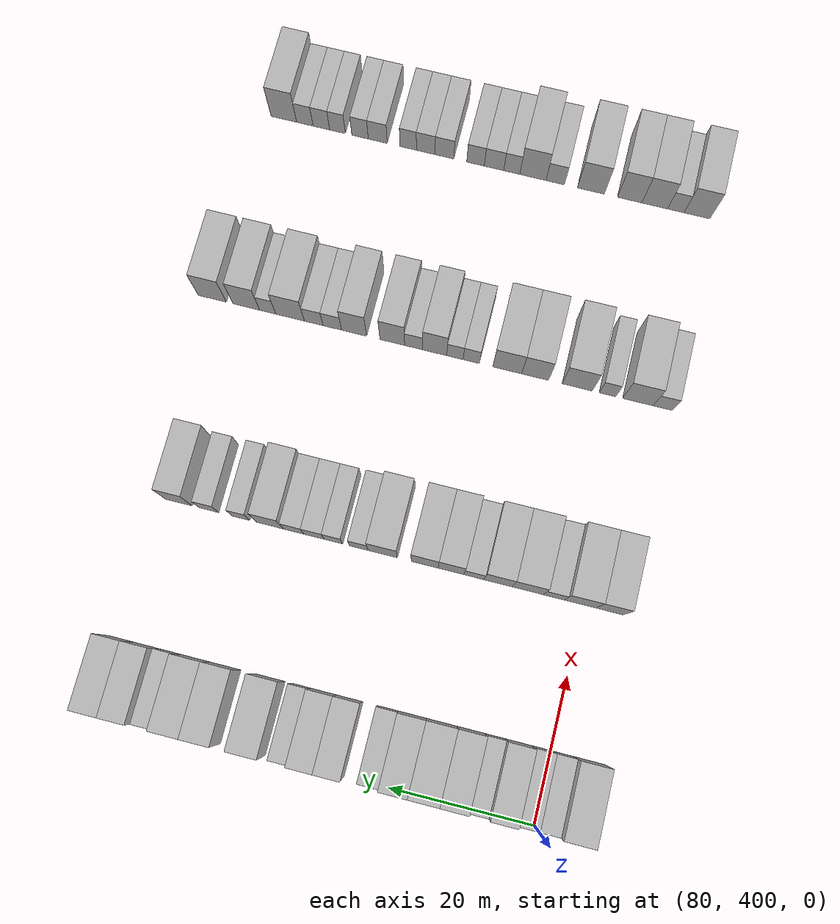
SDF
<sdf version="1.6">
 <world name="default">
  <model name="building_658">
   <static>1</static>
   <pose>85.0000 394.9011 0 0.000000 0.000000 0.000000</pose>
   <link name="link">
    <pose>0 0 4.50 0 0 0</pose>
    <collision name="collision"><geometry><box><size>10.0000 4.2949 9.0000</size></box></geometry></collision>
    <visual name="visual">
     <cast_shadows>0</cast_shadows>
     <geometry><box><size>10.0000 4.2949 9.0000</size></box></geometry>
     <material>
      <script>
       <uri>model://HANNAS_wall/materials/scripts</uri>
       <uri>model://HANNAS_wall/materials/textures</uri>
       <name>vrc/HANNAS_wall</name>
      </script>
     </material>
    </visual>
   </link>
  </model>
  <model name="building_659">
   <static>1</static>
   <pose>85.0000 398.4289 0 0.000000 0.000000 0.000000</pose>
   <link name="link">
    <pose>0 0 3.00 0 0 0</pose>
    <collision name="collision"><geometry><box><size>10.0000 2.7607 6.0000</size></box></geometry></collision>
    <visual name="visual">
     <cast_shadows>0</cast_shadows>
     <geometry><box><size>10.0000 2.7607 6.0000</size></box></geometry>
     <material>
      <script>
       <uri>model://HANNAS_wall/materials/scripts</uri>
       <uri>model://HANNAS_wall/materials/textures</uri>
       <name>vrc/HANNAS_wall</name>
      </script>
     </material>
    </visual>
   </link>
  </model>
  <model name="building_660">
   <static>1</static>
   <pose>85.0000 401.3017 0 0.000000 0.000000 0.000000</pose>
   <link name="link">
    <pose>0 0 3.00 0 0 0</pose>
    <collision name="collision"><geometry><box><size>10.0000 2.9851 6.0000</size></box></geometry></collision>
    <visual name="visual">
     <cast_shadows>0</cast_shadows>
     <geometry><box><size>10.0000 2.9851 6.0000</size></box></geometry>
     <material>
      <script>
       <uri>model://HANNAS_wall/materials/scripts</uri>
       <uri>model://HANNAS_wall/materials/textures</uri>
       <name>vrc/HANNAS_wall</name>
      </script>
     </material>
    </visual>
   </link>
  </model>
  <model name="building_661">
   <static>1</static>
   <pose>85.0000 404.6617 0 0.000000 0.000000 0.000000</pose>
   <link name="link">
    <pose>0 0 4.50 0 0 0</pose>
    <collision name="collision"><geometry><box><size>10.0000 3.7349 9.0000</size></box></geometry></collision>
    <visual name="visual">
     <cast_shadows>0</cast_shadows>
     <geometry><box><size>10.0000 3.7349 9.0000</size></box></geometry>
     <material>
      <script>
       <uri>model://HANNAS_wall/materials/scripts</uri>
       <uri>model://HANNAS_wall/materials/textures</uri>
       <name>vrc/HANNAS_wall</name>
      </script>
     </material>
    </visual>
   </link>
  </model>
  <model name="building_662">
   <static>1</static>
   <pose>85.0000 407.8750 0 0.000000 0.000000 0.000000</pose>
   <link name="link">
    <pose>0 0 3.00 0 0 0</pose>
    <collision name="collision"><geometry><box><size>10.0000 2.6916 6.0000</size></box></geometry></collision>
    <visual name="visual">
     <cast_shadows>0</cast_shadows>
     <geometry><box><size>10.0000 2.6916 6.0000</size></box></geometry>
     <material>
      <script>
       <uri>model://HANNAS_wall/materials/scripts</uri>
       <uri>model://HANNAS_wall/materials/textures</uri>
       <name>vrc/HANNAS_wall</name>
      </script>
     </material>
    </visual>
   </link>
  </model>
  <model name="building_663">
   <static>1</static>
   <pose>85.0000 411.1546 0 0.000000 0.000000 0.000000</pose>
   <link name="link">
    <pose>0 0 4.50 0 0 0</pose>
    <collision name="collision"><geometry><box><size>10.0000 3.8677 9.0000</size></box></geometry></collision>
    <visual name="visual">
     <cast_shadows>0</cast_shadows>
     <geometry><box><size>10.0000 3.8677 9.0000</size></box></geometry>
     <material>
      <script>
       <uri>model://HANNAS_wall/materials/scripts</uri>
       <uri>model://HANNAS_wall/materials/textures</uri>
       <name>vrc/HANNAS_wall</name>
      </script>
     </material>
    </visual>
   </link>
  </model>
  <model name="building_664">
   <static>1</static>
   <pose>85.0000 415.2196 0 0.000000 0.000000 0.000000</pose>
   <link name="link">
    <pose>0 0 4.50 0 0 0</pose>
    <collision name="collision"><geometry><box><size>10.0000 4.2622 9.0000</size></box></geometry></collision>
    <visual name="visual">
     <cast_shadows>0</cast_shadows>
     <geometry><box><size>10.0000 4.2622 9.0000</size></box></geometry>
     <material>
      <script>
       <uri>model://HANNAS_wall/materials/scripts</uri>
       <uri>model://HANNAS_wall/materials/textures</uri>
       <name>vrc/HANNAS_wall</name>
      </script>
     </material>
    </visual>
   </link>
  </model>
  <model name="building_665">
   <static>1</static>
   <pose>85.0000 419.2878 0 0.000000 0.000000 0.000000</pose>
   <link name="link">
    <pose>0 0 4.50 0 0 0</pose>
    <collision name="collision"><geometry><box><size>10.0000 3.8742 9.0000</size></box></geometry></collision>
    <visual name="visual">
     <cast_shadows>0</cast_shadows>
     <geometry><box><size>10.0000 3.8742 9.0000</size></box></geometry>
     <material>
      <script>
       <uri>model://HANNAS_wall/materials/scripts</uri>
       <uri>model://HANNAS_wall/materials/textures</uri>
       <name>vrc/HANNAS_wall</name>
      </script>
     </material>
    </visual>
   </link>
  </model>
  <model name="building_666">
   <static>1</static>
   <pose>85.0000 422.6826 0 0.000000 0.000000 0.000000</pose>
   <link name="link">
    <pose>0 0 3.00 0 0 0</pose>
    <collision name="collision"><geometry><box><size>10.0000 2.9153 6.0000</size></box></geometry></collision>
    <visual name="visual">
     <cast_shadows>0</cast_shadows>
     <geometry><box><size>10.0000 2.9153 6.0000</size></box></geometry>
     <material>
      <script>
       <uri>model://HANNAS_wall/materials/scripts</uri>
       <uri>model://HANNAS_wall/materials/textures</uri>
       <name>vrc/HANNAS_wall</name>
      </script>
     </material>
    </visual>
   </link>
  </model>
  <model name="building_667">
   <static>1</static>
   <pose>85.0000 427.9639 0 0.000000 0.000000 0.000000</pose>
   <link name="link">
    <pose>0 0 4.50 0 0 0</pose>
    <collision name="collision"><geometry><box><size>10.0000 3.6474 9.0000</size></box></geometry></collision>
    <visual name="visual">
     <cast_shadows>0</cast_shadows>
     <geometry><box><size>10.0000 3.6474 9.0000</size></box></geometry>
     <material>
      <script>
       <uri>model://HANNAS_wall/materials/scripts</uri>
       <uri>model://HANNAS_wall/materials/textures</uri>
       <name>vrc/HANNAS_wall</name>
      </script>
     </material>
    </visual>
   </link>
  </model>
  <model name="building_668">
   <static>1</static>
   <pose>85.0000 431.5891 0 0.000000 0.000000 0.000000</pose>
   <link name="link">
    <pose>0 0 4.50 0 0 0</pose>
    <collision name="collision"><geometry><box><size>10.0000 3.6031 9.0000</size></box></geometry></collision>
    <visual name="visual">
     <cast_shadows>0</cast_shadows>
     <geometry><box><size>10.0000 3.6031 9.0000</size></box></geometry>
     <material>
      <script>
       <uri>model://HANNAS_wall/materials/scripts</uri>
       <uri>model://HANNAS_wall/materials/textures</uri>
       <name>vrc/HANNAS_wall</name>
      </script>
     </material>
    </visual>
   </link>
  </model>
  <model name="building_669">
   <static>1</static>
   <pose>85.0000 434.7558 0 0.000000 0.000000 0.000000</pose>
   <link name="link">
    <pose>0 0 3.00 0 0 0</pose>
    <collision name="collision"><geometry><box><size>10.0000 2.7303 6.0000</size></box></geometry></collision>
    <visual name="visual">
     <cast_shadows>0</cast_shadows>
     <geometry><box><size>10.0000 2.7303 6.0000</size></box></geometry>
     <material>
      <script>
       <uri>model://HANNAS_wall/materials/scripts</uri>
       <uri>model://HANNAS_wall/materials/textures</uri>
       <name>vrc/HANNAS_wall</name>
      </script>
     </material>
    </visual>
   </link>
  </model>
  <model name="building_670">
   <static>1</static>
   <pose>85.0000 439.2550 0 0.000000 0.000000 0.000000</pose>
   <link name="link">
    <pose>0 0 4.50 0 0 0</pose>
    <collision name="collision"><geometry><box><size>10.0000 4.2680 9.0000</size></box></geometry></collision>
    <visual name="visual">
     <cast_shadows>0</cast_shadows>
     <geometry><box><size>10.0000 4.2680 9.0000</size></box></geometry>
     <material>
      <script>
       <uri>model://HANNAS_wall/materials/scripts</uri>
       <uri>model://HANNAS_wall/materials/textures</uri>
       <name>vrc/HANNAS_wall</name>
      </script>
     </material>
    </visual>
   </link>
  </model>
  <model name="building_671">
   <static>1</static>
   <pose>85.0000 445.4514 0 0.000000 0.000000 0.000000</pose>
   <link name="link">
    <pose>0 0 4.50 0 0 0</pose>
    <collision name="collision"><geometry><box><size>10.0000 4.1249 9.0000</size></box></geometry></collision>
    <visual name="visual">
     <cast_shadows>0</cast_shadows>
     <geometry><box><size>10.0000 4.1249 9.0000</size></box></geometry>
     <material>
      <script>
       <uri>model://HANNAS_wall/materials/scripts</uri>
       <uri>model://HANNAS_wall/materials/textures</uri>
       <name>vrc/HANNAS_wall</name>
      </script>
     </material>
    </visual>
   </link>
  </model>
  <model name="building_672">
   <static>1</static>
   <pose>85.0000 449.6112 0 0.000000 0.000000 0.000000</pose>
   <link name="link">
    <pose>0 0 4.50 0 0 0</pose>
    <collision name="collision"><geometry><box><size>10.0000 4.1947 9.0000</size></box></geometry></collision>
    <visual name="visual">
     <cast_shadows>0</cast_shadows>
     <geometry><box><size>10.0000 4.1947 9.0000</size></box></geometry>
     <material>
      <script>
       <uri>model://HANNAS_wall/materials/scripts</uri>
       <uri>model://HANNAS_wall/materials/textures</uri>
       <name>vrc/HANNAS_wall</name>
      </script>
     </material>
    </visual>
   </link>
  </model>
  <model name="building_673">
   <static>1</static>
   <pose>85.0000 453.1889 0 0.000000 0.000000 0.000000</pose>
   <link name="link">
    <pose>0 0 3.00 0 0 0</pose>
    <collision name="collision"><geometry><box><size>10.0000 2.9608 6.0000</size></box></geometry></collision>
    <visual name="visual">
     <cast_shadows>0</cast_shadows>
     <geometry><box><size>10.0000 2.9608 6.0000</size></box></geometry>
     <material>
      <script>
       <uri>model://HANNAS_wall/materials/scripts</uri>
       <uri>model://HANNAS_wall/materials/textures</uri>
       <name>vrc/HANNAS_wall</name>
      </script>
     </material>
    </visual>
   </link>
  </model>
  <model name="building_674">
   <static>1</static>
   <pose>85.0000 456.5412 0 0.000000 0.000000 0.000000</pose>
   <link name="link">
    <pose>0 0 4.50 0 0 0</pose>
    <collision name="collision"><geometry><box><size>10.0000 3.7436 9.0000</size></box></geometry></collision>
    <visual name="visual">
     <cast_shadows>0</cast_shadows>
     <geometry><box><size>10.0000 3.7436 9.0000</size></box></geometry>
     <material>
      <script>
       <uri>model://HANNAS_wall/materials/scripts</uri>
       <uri>model://HANNAS_wall/materials/textures</uri>
       <name>vrc/HANNAS_wall</name>
      </script>
     </material>
    </visual>
   </link>
  </model>
  <model name="building_675">
   <static>1</static>
   <pose>85.0000 460.3382 0 0.000000 0.000000 0.000000</pose>
   <link name="link">
    <pose>0 0 4.50 0 0 0</pose>
    <collision name="collision"><geometry><box><size>10.0000 3.8504 9.0000</size></box></geometry></collision>
    <visual name="visual">
     <cast_shadows>0</cast_shadows>
     <geometry><box><size>10.0000 3.8504 9.0000</size></box></geometry>
     <material>
      <script>
       <uri>model://HANNAS_wall/materials/scripts</uri>
       <uri>model://HANNAS_wall/materials/textures</uri>
       <name>vrc/HANNAS_wall</name>
      </script>
     </material>
    </visual>
   </link>
  </model>
  <model name="building_887">
   <static>1</static>
   <pose>115.0000 396.3090 0 0.000000 0.000000 0.000000</pose>
   <link name="link">
    <pose>0 0 4.50 0 0 0</pose>
    <collision name="collision"><geometry><box><size>10.0000 3.8778 9.0000</size></box></geometry></collision>
    <visual name="visual">
     <cast_shadows>0</cast_shadows>
     <geometry><box><size>10.0000 3.8778 9.0000</size></box></geometry>
     <material>
      <script>
       <uri>model://HANNAS_wall/materials/scripts</uri>
       <uri>model://HANNAS_wall/materials/textures</uri>
       <name>vrc/HANNAS_wall</name>
      </script>
     </material>
    </visual>
   </link>
  </model>
  <model name="building_888">
   <static>1</static>
   <pose>115.0000 400.4696 0 0.000000 0.000000 0.000000</pose>
   <link name="link">
    <pose>0 0 4.50 0 0 0</pose>
    <collision name="collision"><geometry><box><size>10.0000 4.4434 9.0000</size></box></geometry></collision>
    <visual name="visual">
     <cast_shadows>0</cast_shadows>
     <geometry><box><size>10.0000 4.4434 9.0000</size></box></geometry>
     <material>
      <script>
       <uri>model://HANNAS_wall/materials/scripts</uri>
       <uri>model://HANNAS_wall/materials/textures</uri>
       <name>vrc/HANNAS_wall</name>
      </script>
     </material>
    </visual>
   </link>
  </model>
  <model name="building_889">
   <static>1</static>
   <pose>115.0000 404.1871 0 0.000000 0.000000 0.000000</pose>
   <link name="link">
    <pose>0 0 3.00 0 0 0</pose>
    <collision name="collision"><geometry><box><size>10.0000 2.9917 6.0000</size></box></geometry></collision>
    <visual name="visual">
     <cast_shadows>0</cast_shadows>
     <geometry><box><size>10.0000 2.9917 6.0000</size></box></geometry>
     <material>
      <script>
       <uri>model://HANNAS_wall/materials/scripts</uri>
       <uri>model://HANNAS_wall/materials/textures</uri>
       <name>vrc/HANNAS_wall</name>
      </script>
     </material>
    </visual>
   </link>
  </model>
  <model name="building_890">
   <static>1</static>
   <pose>115.0000 407.8905 0 0.000000 0.000000 0.000000</pose>
   <link name="link">
    <pose>0 0 4.50 0 0 0</pose>
    <collision name="collision"><geometry><box><size>10.0000 4.4149 9.0000</size></box></geometry></collision>
    <visual name="visual">
     <cast_shadows>0</cast_shadows>
     <geometry><box><size>10.0000 4.4149 9.0000</size></box></geometry>
     <material>
      <script>
       <uri>model://HANNAS_wall/materials/scripts</uri>
       <uri>model://HANNAS_wall/materials/textures</uri>
       <name>vrc/HANNAS_wall</name>
      </script>
     </material>
    </visual>
   </link>
  </model>
  <model name="building_891">
   <static>1</static>
   <pose>115.0000 412.0976 0 0.000000 0.000000 0.000000</pose>
   <link name="link">
    <pose>0 0 4.50 0 0 0</pose>
    <collision name="collision"><geometry><box><size>10.0000 3.9994 9.0000</size></box></geometry></collision>
    <visual name="visual">
     <cast_shadows>0</cast_shadows>
     <geometry><box><size>10.0000 3.9994 9.0000</size></box></geometry>
     <material>
      <script>
       <uri>model://HANNAS_wall/materials/scripts</uri>
       <uri>model://HANNAS_wall/materials/textures</uri>
       <name>vrc/HANNAS_wall</name>
      </script>
     </material>
    </visual>
   </link>
  </model>
  <model name="building_892">
   <static>1</static>
   <pose>115.0000 415.5208 0 0.000000 0.000000 0.000000</pose>
   <link name="link">
    <pose>0 0 3.00 0 0 0</pose>
    <collision name="collision"><geometry><box><size>10.0000 2.8470 6.0000</size></box></geometry></collision>
    <visual name="visual">
     <cast_shadows>0</cast_shadows>
     <geometry><box><size>10.0000 2.8470 6.0000</size></box></geometry>
     <material>
      <script>
       <uri>model://HANNAS_wall/materials/scripts</uri>
       <uri>model://HANNAS_wall/materials/textures</uri>
       <name>vrc/HANNAS_wall</name>
      </script>
     </material>
    </visual>
   </link>
  </model>
  <model name="building_893">
   <static>1</static>
   <pose>115.0000 418.7851 0 0.000000 0.000000 0.000000</pose>
   <link name="link">
    <pose>0 0 4.50 0 0 0</pose>
    <collision name="collision"><geometry><box><size>10.0000 3.6815 9.0000</size></box></geometry></collision>
    <visual name="visual">
     <cast_shadows>0</cast_shadows>
     <geometry><box><size>10.0000 3.6815 9.0000</size></box></geometry>
     <material>
      <script>
       <uri>model://HANNAS_wall/materials/scripts</uri>
       <uri>model://HANNAS_wall/materials/textures</uri>
       <name>vrc/HANNAS_wall</name>
      </script>
     </material>
    </visual>
   </link>
  </model>
  <model name="building_894">
   <static>1</static>
   <pose>115.0000 422.5538 0 0.000000 0.000000 0.000000</pose>
   <link name="link">
    <pose>0 0 4.50 0 0 0</pose>
    <collision name="collision"><geometry><box><size>10.0000 3.8559 9.0000</size></box></geometry></collision>
    <visual name="visual">
     <cast_shadows>0</cast_shadows>
     <geometry><box><size>10.0000 3.8559 9.0000</size></box></geometry>
     <material>
      <script>
       <uri>model://HANNAS_wall/materials/scripts</uri>
       <uri>model://HANNAS_wall/materials/textures</uri>
       <name>vrc/HANNAS_wall</name>
      </script>
     </material>
    </visual>
   </link>
  </model>
  <model name="building_895">
   <static>1</static>
   <pose>115.0000 428.5721 0 0.000000 0.000000 0.000000</pose>
   <link name="link">
    <pose>0 0 4.50 0 0 0</pose>
    <collision name="collision"><geometry><box><size>10.0000 4.1807 9.0000</size></box></geometry></collision>
    <visual name="visual">
     <cast_shadows>0</cast_shadows>
     <geometry><box><size>10.0000 4.1807 9.0000</size></box></geometry>
     <material>
      <script>
       <uri>model://HANNAS_wall/materials/scripts</uri>
       <uri>model://HANNAS_wall/materials/textures</uri>
       <name>vrc/HANNAS_wall</name>
      </script>
     </material>
    </visual>
   </link>
  </model>
  <model name="building_896">
   <static>1</static>
   <pose>115.0000 432.0067 0 0.000000 0.000000 0.000000</pose>
   <link name="link">
    <pose>0 0 3.00 0 0 0</pose>
    <collision name="collision"><geometry><box><size>10.0000 2.6884 6.0000</size></box></geometry></collision>
    <visual name="visual">
     <cast_shadows>0</cast_shadows>
     <geometry><box><size>10.0000 2.6884 6.0000</size></box></geometry>
     <material>
      <script>
       <uri>model://HANNAS_wall/materials/scripts</uri>
       <uri>model://HANNAS_wall/materials/textures</uri>
       <name>vrc/HANNAS_wall</name>
      </script>
     </material>
    </visual>
   </link>
  </model>
  <model name="building_897">
   <static>1</static>
   <pose>115.0000 435.6770 0 0.000000 0.000000 0.000000</pose>
   <link name="link">
    <pose>0 0 3.00 0 0 0</pose>
    <collision name="collision"><geometry><box><size>10.0000 2.6522 6.0000</size></box></geometry></collision>
    <visual name="visual">
     <cast_shadows>0</cast_shadows>
     <geometry><box><size>10.0000 2.6522 6.0000</size></box></geometry>
     <material>
      <script>
       <uri>model://HANNAS_wall/materials/scripts</uri>
       <uri>model://HANNAS_wall/materials/textures</uri>
       <name>vrc/HANNAS_wall</name>
      </script>
     </material>
    </visual>
   </link>
  </model>
  <model name="building_898">
   <static>1</static>
   <pose>115.0000 438.4623 0 0.000000 0.000000 0.000000</pose>
   <link name="link">
    <pose>0 0 3.00 0 0 0</pose>
    <collision name="collision"><geometry><box><size>10.0000 2.9184 6.0000</size></box></geometry></collision>
    <visual name="visual">
     <cast_shadows>0</cast_shadows>
     <geometry><box><size>10.0000 2.9184 6.0000</size></box></geometry>
     <material>
      <script>
       <uri>model://HANNAS_wall/materials/scripts</uri>
       <uri>model://HANNAS_wall/materials/textures</uri>
       <name>vrc/HANNAS_wall</name>
      </script>
     </material>
    </visual>
   </link>
  </model>
  <model name="building_899">
   <static>1</static>
   <pose>115.0000 441.4171 0 0.000000 0.000000 0.000000</pose>
   <link name="link">
    <pose>0 0 3.00 0 0 0</pose>
    <collision name="collision"><geometry><box><size>10.0000 2.9913 6.0000</size></box></geometry></collision>
    <visual name="visual">
     <cast_shadows>0</cast_shadows>
     <geometry><box><size>10.0000 2.9913 6.0000</size></box></geometry>
     <material>
      <script>
       <uri>model://HANNAS_wall/materials/scripts</uri>
       <uri>model://HANNAS_wall/materials/textures</uri>
       <name>vrc/HANNAS_wall</name>
      </script>
     </material>
    </visual>
   </link>
  </model>
  <model name="building_900">
   <static>1</static>
   <pose>115.0000 444.8661 0 0.000000 0.000000 0.000000</pose>
   <link name="link">
    <pose>0 0 4.50 0 0 0</pose>
    <collision name="collision"><geometry><box><size>10.0000 3.9066 9.0000</size></box></geometry></collision>
    <visual name="visual">
     <cast_shadows>0</cast_shadows>
     <geometry><box><size>10.0000 3.9066 9.0000</size></box></geometry>
     <material>
      <script>
       <uri>model://HANNAS_wall/materials/scripts</uri>
       <uri>model://HANNAS_wall/materials/textures</uri>
       <name>vrc/HANNAS_wall</name>
      </script>
     </material>
    </visual>
   </link>
  </model>
  <model name="building_901">
   <static>1</static>
   <pose>115.0000 449.1017 0 0.000000 0.000000 0.000000</pose>
   <link name="link">
    <pose>0 0 3.00 0 0 0</pose>
    <collision name="collision"><geometry><box><size>10.0000 2.5647 6.0000</size></box></geometry></collision>
    <visual name="visual">
     <cast_shadows>0</cast_shadows>
     <geometry><box><size>10.0000 2.5647 6.0000</size></box></geometry>
     <material>
      <script>
       <uri>model://HANNAS_wall/materials/scripts</uri>
       <uri>model://HANNAS_wall/materials/textures</uri>
       <name>vrc/HANNAS_wall</name>
      </script>
     </material>
    </visual>
   </link>
  </model>
  <model name="building_902">
   <static>1</static>
   <pose>115.0000 453.8075 0 0.000000 0.000000 0.000000</pose>
   <link name="link">
    <pose>0 0 3.00 0 0 0</pose>
    <collision name="collision"><geometry><box><size>10.0000 2.8468 6.0000</size></box></geometry></collision>
    <visual name="visual">
     <cast_shadows>0</cast_shadows>
     <geometry><box><size>10.0000 2.8468 6.0000</size></box></geometry>
     <material>
      <script>
       <uri>model://HANNAS_wall/materials/scripts</uri>
       <uri>model://HANNAS_wall/materials/textures</uri>
       <name>vrc/HANNAS_wall</name>
      </script>
     </material>
    </visual>
   </link>
  </model>
  <model name="building_903">
   <static>1</static>
   <pose>115.0000 458.1854 0 0.000000 0.000000 0.000000</pose>
   <link name="link">
    <pose>0 0 4.50 0 0 0</pose>
    <collision name="collision"><geometry><box><size>10.0000 3.9090 9.0000</size></box></geometry></collision>
    <visual name="visual">
     <cast_shadows>0</cast_shadows>
     <geometry><box><size>10.0000 3.9090 9.0000</size></box></geometry>
     <material>
      <script>
       <uri>model://HANNAS_wall/materials/scripts</uri>
       <uri>model://HANNAS_wall/materials/textures</uri>
       <name>vrc/HANNAS_wall</name>
      </script>
     </material>
    </visual>
   </link>
  </model>
  <model name="building_1105">
   <static>1</static>
   <pose>145.0000 394.9162 0 0.000000 0.000000 0.000000</pose>
   <link name="link">
    <pose>0 0 3.00 0 0 0</pose>
    <collision name="collision"><geometry><box><size>10.0000 2.8288 6.0000</size></box></geometry></collision>
    <visual name="visual">
     <cast_shadows>0</cast_shadows>
     <geometry><box><size>10.0000 2.8288 6.0000</size></box></geometry>
     <material>
      <script>
       <uri>model://HANNAS_wall/materials/scripts</uri>
       <uri>model://HANNAS_wall/materials/textures</uri>
       <name>vrc/HANNAS_wall</name>
      </script>
     </material>
    </visual>
   </link>
  </model>
  <model name="building_1106">
   <static>1</static>
   <pose>145.0000 398.5685 0 0.000000 0.000000 0.000000</pose>
   <link name="link">
    <pose>0 0 4.50 0 0 0</pose>
    <collision name="collision"><geometry><box><size>10.0000 4.4757 9.0000</size></box></geometry></collision>
    <visual name="visual">
     <cast_shadows>0</cast_shadows>
     <geometry><box><size>10.0000 4.4757 9.0000</size></box></geometry>
     <material>
      <script>
       <uri>model://HANNAS_wall/materials/scripts</uri>
       <uri>model://HANNAS_wall/materials/textures</uri>
       <name>vrc/HANNAS_wall</name>
      </script>
     </material>
    </visual>
   </link>
  </model>
  <model name="building_1107">
   <static>1</static>
   <pose>145.0000 403.0297 0 0.000000 0.000000 0.000000</pose>
   <link name="link">
    <pose>0 0 3.00 0 0 0</pose>
    <collision name="collision"><geometry><box><size>10.0000 2.4468 6.0000</size></box></geometry></collision>
    <visual name="visual">
     <cast_shadows>0</cast_shadows>
     <geometry><box><size>10.0000 2.4468 6.0000</size></box></geometry>
     <material>
      <script>
       <uri>model://HANNAS_wall/materials/scripts</uri>
       <uri>model://HANNAS_wall/materials/textures</uri>
       <name>vrc/HANNAS_wall</name>
      </script>
     </material>
    </visual>
   </link>
  </model>
  <model name="building_1108">
   <static>1</static>
   <pose>145.0000 407.4790 0 0.000000 0.000000 0.000000</pose>
   <link name="link">
    <pose>0 0 4.50 0 0 0</pose>
    <collision name="collision"><geometry><box><size>10.0000 4.4517 9.0000</size></box></geometry></collision>
    <visual name="visual">
     <cast_shadows>0</cast_shadows>
     <geometry><box><size>10.0000 4.4517 9.0000</size></box></geometry>
     <material>
      <script>
       <uri>model://HANNAS_wall/materials/scripts</uri>
       <uri>model://HANNAS_wall/materials/textures</uri>
       <name>vrc/HANNAS_wall</name>
      </script>
     </material>
    </visual>
   </link>
  </model>
  <model name="building_1109">
   <static>1</static>
   <pose>145.0000 413.6977 0 0.000000 0.000000 0.000000</pose>
   <link name="link">
    <pose>0 0 4.50 0 0 0</pose>
    <collision name="collision"><geometry><box><size>10.0000 3.9856 9.0000</size></box></geometry></collision>
    <visual name="visual">
     <cast_shadows>0</cast_shadows>
     <geometry><box><size>10.0000 3.9856 9.0000</size></box></geometry>
     <material>
      <script>
       <uri>model://HANNAS_wall/materials/scripts</uri>
       <uri>model://HANNAS_wall/materials/textures</uri>
       <name>vrc/HANNAS_wall</name>
      </script>
     </material>
    </visual>
   </link>
  </model>
  <model name="building_1110">
   <static>1</static>
   <pose>145.0000 417.8233 0 0.000000 0.000000 0.000000</pose>
   <link name="link">
    <pose>0 0 4.50 0 0 0</pose>
    <collision name="collision"><geometry><box><size>10.0000 4.2655 9.0000</size></box></geometry></collision>
    <visual name="visual">
     <cast_shadows>0</cast_shadows>
     <geometry><box><size>10.0000 4.2655 9.0000</size></box></geometry>
     <material>
      <script>
       <uri>model://HANNAS_wall/materials/scripts</uri>
       <uri>model://HANNAS_wall/materials/textures</uri>
       <name>vrc/HANNAS_wall</name>
      </script>
     </material>
    </visual>
   </link>
  </model>
  <model name="building_1111">
   <static>1</static>
   <pose>145.0000 423.1645 0 0.000000 0.000000 0.000000</pose>
   <link name="link">
    <pose>0 0 3.00 0 0 0</pose>
    <collision name="collision"><geometry><box><size>10.0000 2.4168 6.0000</size></box></geometry></collision>
    <visual name="visual">
     <cast_shadows>0</cast_shadows>
     <geometry><box><size>10.0000 2.4168 6.0000</size></box></geometry>
     <material>
      <script>
       <uri>model://HANNAS_wall/materials/scripts</uri>
       <uri>model://HANNAS_wall/materials/textures</uri>
       <name>vrc/HANNAS_wall</name>
      </script>
     </material>
    </visual>
   </link>
  </model>
  <model name="building_1112">
   <static>1</static>
   <pose>145.0000 425.5908 0 0.000000 0.000000 0.000000</pose>
   <link name="link">
    <pose>0 0 3.00 0 0 0</pose>
    <collision name="collision"><geometry><box><size>10.0000 2.4359 6.0000</size></box></geometry></collision>
    <visual name="visual">
     <cast_shadows>0</cast_shadows>
     <geometry><box><size>10.0000 2.4359 6.0000</size></box></geometry>
     <material>
      <script>
       <uri>model://HANNAS_wall/materials/scripts</uri>
       <uri>model://HANNAS_wall/materials/textures</uri>
       <name>vrc/HANNAS_wall</name>
      </script>
     </material>
    </visual>
   </link>
  </model>
  <model name="building_1113">
   <static>1</static>
   <pose>145.0000 428.6189 0 0.000000 0.000000 0.000000</pose>
   <link name="link">
    <pose>0 0 4.50 0 0 0</pose>
    <collision name="collision"><geometry><box><size>10.0000 3.6203 9.0000</size></box></geometry></collision>
    <visual name="visual">
     <cast_shadows>0</cast_shadows>
     <geometry><box><size>10.0000 3.6203 9.0000</size></box></geometry>
     <material>
      <script>
       <uri>model://HANNAS_wall/materials/scripts</uri>
       <uri>model://HANNAS_wall/materials/textures</uri>
       <name>vrc/HANNAS_wall</name>
      </script>
     </material>
    </visual>
   </link>
  </model>
  <model name="building_1114">
   <static>1</static>
   <pose>145.0000 431.7584 0 0.000000 0.000000 0.000000</pose>
   <link name="link">
    <pose>0 0 3.00 0 0 0</pose>
    <collision name="collision"><geometry><box><size>10.0000 2.6587 6.0000</size></box></geometry></collision>
    <visual name="visual">
     <cast_shadows>0</cast_shadows>
     <geometry><box><size>10.0000 2.6587 6.0000</size></box></geometry>
     <material>
      <script>
       <uri>model://HANNAS_wall/materials/scripts</uri>
       <uri>model://HANNAS_wall/materials/textures</uri>
       <name>vrc/HANNAS_wall</name>
      </script>
     </material>
    </visual>
   </link>
  </model>
  <model name="building_1115">
   <static>1</static>
   <pose>145.0000 434.9361 0 0.000000 0.000000 0.000000</pose>
   <link name="link">
    <pose>0 0 4.50 0 0 0</pose>
    <collision name="collision"><geometry><box><size>10.0000 3.6969 9.0000</size></box></geometry></collision>
    <visual name="visual">
     <cast_shadows>0</cast_shadows>
     <geometry><box><size>10.0000 3.6969 9.0000</size></box></geometry>
     <material>
      <script>
       <uri>model://HANNAS_wall/materials/scripts</uri>
       <uri>model://HANNAS_wall/materials/textures</uri>
       <name>vrc/HANNAS_wall</name>
      </script>
     </material>
    </visual>
   </link>
  </model>
  <model name="building_1116">
   <static>1</static>
   <pose>145.0000 440.6644 0 0.000000 0.000000 0.000000</pose>
   <link name="link">
    <pose>0 0 4.50 0 0 0</pose>
    <collision name="collision"><geometry><box><size>10.0000 3.7597 9.0000</size></box></geometry></collision>
    <visual name="visual">
     <cast_shadows>0</cast_shadows>
     <geometry><box><size>10.0000 3.7597 9.0000</size></box></geometry>
     <material>
      <script>
       <uri>model://HANNAS_wall/materials/scripts</uri>
       <uri>model://HANNAS_wall/materials/textures</uri>
       <name>vrc/HANNAS_wall</name>
      </script>
     </material>
    </visual>
   </link>
  </model>
  <model name="building_1117">
   <static>1</static>
   <pose>145.0000 443.9388 0 0.000000 0.000000 0.000000</pose>
   <link name="link">
    <pose>0 0 3.00 0 0 0</pose>
    <collision name="collision"><geometry><box><size>10.0000 2.7892 6.0000</size></box></geometry></collision>
    <visual name="visual">
     <cast_shadows>0</cast_shadows>
     <geometry><box><size>10.0000 2.7892 6.0000</size></box></geometry>
     <material>
      <script>
       <uri>model://HANNAS_wall/materials/scripts</uri>
       <uri>model://HANNAS_wall/materials/textures</uri>
       <name>vrc/HANNAS_wall</name>
      </script>
     </material>
    </visual>
   </link>
  </model>
  <model name="building_1118">
   <static>1</static>
   <pose>145.0000 446.7315 0 0.000000 0.000000 0.000000</pose>
   <link name="link">
    <pose>0 0 3.00 0 0 0</pose>
    <collision name="collision"><geometry><box><size>10.0000 2.7960 6.0000</size></box></geometry></collision>
    <visual name="visual">
     <cast_shadows>0</cast_shadows>
     <geometry><box><size>10.0000 2.7960 6.0000</size></box></geometry>
     <material>
      <script>
       <uri>model://HANNAS_wall/materials/scripts</uri>
       <uri>model://HANNAS_wall/materials/textures</uri>
       <name>vrc/HANNAS_wall</name>
      </script>
     </material>
    </visual>
   </link>
  </model>
  <model name="building_1119">
   <static>1</static>
   <pose>145.0000 450.2994 0 0.000000 0.000000 0.000000</pose>
   <link name="link">
    <pose>0 0 4.50 0 0 0</pose>
    <collision name="collision"><geometry><box><size>10.0000 4.3398 9.0000</size></box></geometry></collision>
    <visual name="visual">
     <cast_shadows>0</cast_shadows>
     <geometry><box><size>10.0000 4.3398 9.0000</size></box></geometry>
     <material>
      <script>
       <uri>model://HANNAS_wall/materials/scripts</uri>
       <uri>model://HANNAS_wall/materials/textures</uri>
       <name>vrc/HANNAS_wall</name>
      </script>
     </material>
    </visual>
   </link>
  </model>
  <model name="building_1120">
   <static>1</static>
   <pose>145.0000 453.6876 0 0.000000 0.000000 0.000000</pose>
   <link name="link">
    <pose>0 0 3.00 0 0 0</pose>
    <collision name="collision"><geometry><box><size>10.0000 2.4366 6.0000</size></box></geometry></collision>
    <visual name="visual">
     <cast_shadows>0</cast_shadows>
     <geometry><box><size>10.0000 2.4366 6.0000</size></box></geometry>
     <material>
      <script>
       <uri>model://HANNAS_wall/materials/scripts</uri>
       <uri>model://HANNAS_wall/materials/textures</uri>
       <name>vrc/HANNAS_wall</name>
      </script>
     </material>
    </visual>
   </link>
  </model>
  <model name="building_1121">
   <static>1</static>
   <pose>145.0000 456.9365 0 0.000000 0.000000 0.000000</pose>
   <link name="link">
    <pose>0 0 4.50 0 0 0</pose>
    <collision name="collision"><geometry><box><size>10.0000 4.0612 9.0000</size></box></geometry></collision>
    <visual name="visual">
     <cast_shadows>0</cast_shadows>
     <geometry><box><size>10.0000 4.0612 9.0000</size></box></geometry>
     <material>
      <script>
       <uri>model://HANNAS_wall/materials/scripts</uri>
       <uri>model://HANNAS_wall/materials/textures</uri>
       <name>vrc/HANNAS_wall</name>
      </script>
     </material>
    </visual>
   </link>
  </model>
  <model name="building_1122">
   <static>1</static>
   <pose>145.0000 462.1097 0 0.000000 0.000000 0.000000</pose>
   <link name="link">
    <pose>0 0 4.50 0 0 0</pose>
    <collision name="collision"><geometry><box><size>10.0000 4.2852 9.0000</size></box></geometry></collision>
    <visual name="visual">
     <cast_shadows>0</cast_shadows>
     <geometry><box><size>10.0000 4.2852 9.0000</size></box></geometry>
     <material>
      <script>
       <uri>model://HANNAS_wall/materials/scripts</uri>
       <uri>model://HANNAS_wall/materials/textures</uri>
       <name>vrc/HANNAS_wall</name>
      </script>
     </material>
    </visual>
   </link>
  </model>
  <model name="building_1342">
   <static>1</static>
   <pose>175.0000 395.8871 0 0.000000 0.000000 0.000000</pose>
   <link name="link">
    <pose>0 0 4.50 0 0 0</pose>
    <collision name="collision"><geometry><box><size>10.0000 3.9157 9.0000</size></box></geometry></collision>
    <visual name="visual">
     <cast_shadows>0</cast_shadows>
     <geometry><box><size>10.0000 3.9157 9.0000</size></box></geometry>
     <material>
      <script>
       <uri>model://HANNAS_wall/materials/scripts</uri>
       <uri>model://HANNAS_wall/materials/textures</uri>
       <name>vrc/HANNAS_wall</name>
      </script>
     </material>
    </visual>
   </link>
  </model>
  <model name="building_1343">
   <static>1</static>
   <pose>175.0000 399.0867 0 0.000000 0.000000 0.000000</pose>
   <link name="link">
    <pose>0 0 3.00 0 0 0</pose>
    <collision name="collision"><geometry><box><size>10.0000 2.4837 6.0000</size></box></geometry></collision>
    <visual name="visual">
     <cast_shadows>0</cast_shadows>
     <geometry><box><size>10.0000 2.4837 6.0000</size></box></geometry>
     <material>
      <script>
       <uri>model://HANNAS_wall/materials/scripts</uri>
       <uri>model://HANNAS_wall/materials/textures</uri>
       <name>vrc/HANNAS_wall</name>
      </script>
     </material>
    </visual>
   </link>
  </model>
  <model name="building_1344">
   <static>1</static>
   <pose>175.0000 402.2830 0 0.000000 0.000000 0.000000</pose>
   <link name="link">
    <pose>0 0 4.50 0 0 0</pose>
    <collision name="collision"><geometry><box><size>10.0000 3.9088 9.0000</size></box></geometry></collision>
    <visual name="visual">
     <cast_shadows>0</cast_shadows>
     <geometry><box><size>10.0000 3.9088 9.0000</size></box></geometry>
     <material>
      <script>
       <uri>model://HANNAS_wall/materials/scripts</uri>
       <uri>model://HANNAS_wall/materials/textures</uri>
       <name>vrc/HANNAS_wall</name>
      </script>
     </material>
    </visual>
   </link>
  </model>
  <model name="building_1345">
   <static>1</static>
   <pose>175.0000 406.1063 0 0.000000 0.000000 0.000000</pose>
   <link name="link">
    <pose>0 0 4.50 0 0 0</pose>
    <collision name="collision"><geometry><box><size>10.0000 3.7379 9.0000</size></box></geometry></collision>
    <visual name="visual">
     <cast_shadows>0</cast_shadows>
     <geometry><box><size>10.0000 3.7379 9.0000</size></box></geometry>
     <material>
      <script>
       <uri>model://HANNAS_wall/materials/scripts</uri>
       <uri>model://HANNAS_wall/materials/textures</uri>
       <name>vrc/HANNAS_wall</name>
      </script>
     </material>
    </visual>
   </link>
  </model>
  <model name="building_1346">
   <static>1</static>
   <pose>175.0000 412.0327 0 0.000000 0.000000 0.000000</pose>
   <link name="link">
    <pose>0 0 4.50 0 0 0</pose>
    <collision name="collision"><geometry><box><size>10.0000 4.1149 9.0000</size></box></geometry></collision>
    <visual name="visual">
     <cast_shadows>0</cast_shadows>
     <geometry><box><size>10.0000 4.1149 9.0000</size></box></geometry>
     <material>
      <script>
       <uri>model://HANNAS_wall/materials/scripts</uri>
       <uri>model://HANNAS_wall/materials/textures</uri>
       <name>vrc/HANNAS_wall</name>
      </script>
     </material>
    </visual>
   </link>
  </model>
  <model name="building_1347">
   <static>1</static>
   <pose>175.0000 417.4970 0 0.000000 0.000000 0.000000</pose>
   <link name="link">
    <pose>0 0 3.00 0 0 0</pose>
    <collision name="collision"><geometry><box><size>10.0000 2.8138 6.0000</size></box></geometry></collision>
    <visual name="visual">
     <cast_shadows>0</cast_shadows>
     <geometry><box><size>10.0000 2.8138 6.0000</size></box></geometry>
     <material>
      <script>
       <uri>model://HANNAS_wall/materials/scripts</uri>
       <uri>model://HANNAS_wall/materials/textures</uri>
       <name>vrc/HANNAS_wall</name>
      </script>
     </material>
    </visual>
   </link>
  </model>
  <model name="building_1348">
   <static>1</static>
   <pose>175.0000 420.9175 0 0.000000 0.000000 0.000000</pose>
   <link name="link">
    <pose>0 0 4.50 0 0 0</pose>
    <collision name="collision"><geometry><box><size>10.0000 4.0272 9.0000</size></box></geometry></collision>
    <visual name="visual">
     <cast_shadows>0</cast_shadows>
     <geometry><box><size>10.0000 4.0272 9.0000</size></box></geometry>
     <material>
      <script>
       <uri>model://HANNAS_wall/materials/scripts</uri>
       <uri>model://HANNAS_wall/materials/textures</uri>
       <name>vrc/HANNAS_wall</name>
      </script>
     </material>
    </visual>
   </link>
  </model>
  <model name="building_1349">
   <static>1</static>
   <pose>175.0000 424.1722 0 0.000000 0.000000 0.000000</pose>
   <link name="link">
    <pose>0 0 3.00 0 0 0</pose>
    <collision name="collision"><geometry><box><size>10.0000 2.4822 6.0000</size></box></geometry></collision>
    <visual name="visual">
     <cast_shadows>0</cast_shadows>
     <geometry><box><size>10.0000 2.4822 6.0000</size></box></geometry>
     <material>
      <script>
       <uri>model://HANNAS_wall/materials/scripts</uri>
       <uri>model://HANNAS_wall/materials/textures</uri>
       <name>vrc/HANNAS_wall</name>
      </script>
     </material>
    </visual>
   </link>
  </model>
  <model name="building_1350">
   <static>1</static>
   <pose>175.0000 426.9118 0 0.000000 0.000000 0.000000</pose>
   <link name="link">
    <pose>0 0 3.00 0 0 0</pose>
    <collision name="collision"><geometry><box><size>10.0000 2.9970 6.0000</size></box></geometry></collision>
    <visual name="visual">
     <cast_shadows>0</cast_shadows>
     <geometry><box><size>10.0000 2.9970 6.0000</size></box></geometry>
     <material>
      <script>
       <uri>model://HANNAS_wall/materials/scripts</uri>
       <uri>model://HANNAS_wall/materials/textures</uri>
       <name>vrc/HANNAS_wall</name>
      </script>
     </material>
    </visual>
   </link>
  </model>
  <model name="building_1351">
   <static>1</static>
   <pose>175.0000 429.7632 0 0.000000 0.000000 0.000000</pose>
   <link name="link">
    <pose>0 0 3.00 0 0 0</pose>
    <collision name="collision"><geometry><box><size>10.0000 2.7057 6.0000</size></box></geometry></collision>
    <visual name="visual">
     <cast_shadows>0</cast_shadows>
     <geometry><box><size>10.0000 2.7057 6.0000</size></box></geometry>
     <material>
      <script>
       <uri>model://HANNAS_wall/materials/scripts</uri>
       <uri>model://HANNAS_wall/materials/textures</uri>
       <name>vrc/HANNAS_wall</name>
      </script>
     </material>
    </visual>
   </link>
  </model>
  <model name="building_1352">
   <static>1</static>
   <pose>175.0000 434.5791 0 0.000000 0.000000 0.000000</pose>
   <link name="link">
    <pose>0 0 3.00 0 0 0</pose>
    <collision name="collision"><geometry><box><size>10.0000 2.9260 6.0000</size></box></geometry></collision>
    <visual name="visual">
     <cast_shadows>0</cast_shadows>
     <geometry><box><size>10.0000 2.9260 6.0000</size></box></geometry>
     <material>
      <script>
       <uri>model://HANNAS_wall/materials/scripts</uri>
       <uri>model://HANNAS_wall/materials/textures</uri>
       <name>vrc/HANNAS_wall</name>
      </script>
     </material>
    </visual>
   </link>
  </model>
  <model name="building_1353">
   <static>1</static>
   <pose>175.0000 437.4840 0 0.000000 0.000000 0.000000</pose>
   <link name="link">
    <pose>0 0 3.00 0 0 0</pose>
    <collision name="collision"><geometry><box><size>10.0000 2.8838 6.0000</size></box></geometry></collision>
    <visual name="visual">
     <cast_shadows>0</cast_shadows>
     <geometry><box><size>10.0000 2.8838 6.0000</size></box></geometry>
     <material>
      <script>
       <uri>model://HANNAS_wall/materials/scripts</uri>
       <uri>model://HANNAS_wall/materials/textures</uri>
       <name>vrc/HANNAS_wall</name>
      </script>
     </material>
    </visual>
   </link>
  </model>
  <model name="building_1354">
   <static>1</static>
   <pose>175.0000 440.1962 0 0.000000 0.000000 0.000000</pose>
   <link name="link">
    <pose>0 0 3.00 0 0 0</pose>
    <collision name="collision"><geometry><box><size>10.0000 2.5405 6.0000</size></box></geometry></collision>
    <visual name="visual">
     <cast_shadows>0</cast_shadows>
     <geometry><box><size>10.0000 2.5405 6.0000</size></box></geometry>
     <material>
      <script>
       <uri>model://HANNAS_wall/materials/scripts</uri>
       <uri>model://HANNAS_wall/materials/textures</uri>
       <name>vrc/HANNAS_wall</name>
      </script>
     </material>
    </visual>
   </link>
  </model>
  <model name="building_1355">
   <static>1</static>
   <pose>175.0000 444.9403 0 0.000000 0.000000 0.000000</pose>
   <link name="link">
    <pose>0 0 3.00 0 0 0</pose>
    <collision name="collision"><geometry><box><size>10.0000 2.9479 6.0000</size></box></geometry></collision>
    <visual name="visual">
     <cast_shadows>0</cast_shadows>
     <geometry><box><size>10.0000 2.9479 6.0000</size></box></geometry>
     <material>
      <script>
       <uri>model://HANNAS_wall/materials/scripts</uri>
       <uri>model://HANNAS_wall/materials/textures</uri>
       <name>vrc/HANNAS_wall</name>
      </script>
     </material>
    </visual>
   </link>
  </model>
  <model name="building_1356">
   <static>1</static>
   <pose>175.0000 447.6950 0 0.000000 0.000000 0.000000</pose>
   <link name="link">
    <pose>0 0 3.00 0 0 0</pose>
    <collision name="collision"><geometry><box><size>10.0000 2.5614 6.0000</size></box></geometry></collision>
    <visual name="visual">
     <cast_shadows>0</cast_shadows>
     <geometry><box><size>10.0000 2.5614 6.0000</size></box></geometry>
     <material>
      <script>
       <uri>model://HANNAS_wall/materials/scripts</uri>
       <uri>model://HANNAS_wall/materials/textures</uri>
       <name>vrc/HANNAS_wall</name>
      </script>
     </material>
    </visual>
   </link>
  </model>
  <model name="building_1357">
   <static>1</static>
   <pose>175.0000 451.2134 0 0.000000 0.000000 0.000000</pose>
   <link name="link">
    <pose>0 0 3.00 0 0 0</pose>
    <collision name="collision"><geometry><box><size>10.0000 2.4756 6.0000</size></box></geometry></collision>
    <visual name="visual">
     <cast_shadows>0</cast_shadows>
     <geometry><box><size>10.0000 2.4756 6.0000</size></box></geometry>
     <material>
      <script>
       <uri>model://HANNAS_wall/materials/scripts</uri>
       <uri>model://HANNAS_wall/materials/textures</uri>
       <name>vrc/HANNAS_wall</name>
      </script>
     </material>
    </visual>
   </link>
  </model>
  <model name="building_1358">
   <static>1</static>
   <pose>175.0000 453.7463 0 0.000000 0.000000 0.000000</pose>
   <link name="link">
    <pose>0 0 3.00 0 0 0</pose>
    <collision name="collision"><geometry><box><size>10.0000 2.5900 6.0000</size></box></geometry></collision>
    <visual name="visual">
     <cast_shadows>0</cast_shadows>
     <geometry><box><size>10.0000 2.5900 6.0000</size></box></geometry>
     <material>
      <script>
       <uri>model://HANNAS_wall/materials/scripts</uri>
       <uri>model://HANNAS_wall/materials/textures</uri>
       <name>vrc/HANNAS_wall</name>
      </script>
     </material>
    </visual>
   </link>
  </model>
  <model name="building_1359">
   <static>1</static>
   <pose>175.0000 456.3304 0 0.000000 0.000000 0.000000</pose>
   <link name="link">
    <pose>0 0 3.00 0 0 0</pose>
    <collision name="collision"><geometry><box><size>10.0000 2.5783 6.0000</size></box></geometry></collision>
    <visual name="visual">
     <cast_shadows>0</cast_shadows>
     <geometry><box><size>10.0000 2.5783 6.0000</size></box></geometry>
     <material>
      <script>
       <uri>model://HANNAS_wall/materials/scripts</uri>
       <uri>model://HANNAS_wall/materials/textures</uri>
       <name>vrc/HANNAS_wall</name>
      </script>
     </material>
    </visual>
   </link>
  </model>
  <model name="building_1360">
   <static>1</static>
   <pose>175.0000 459.6287 0 0.000000 0.000000 0.000000</pose>
   <link name="link">
    <pose>0 0 4.50 0 0 0</pose>
    <collision name="collision"><geometry><box><size>10.0000 4.0183 9.0000</size></box></geometry></collision>
    <visual name="visual">
     <cast_shadows>0</cast_shadows>
     <geometry><box><size>10.0000 4.0183 9.0000</size></box></geometry>
     <material>
      <script>
       <uri>model://HANNAS_wall/materials/scripts</uri>
       <uri>model://HANNAS_wall/materials/textures</uri>
       <name>vrc/HANNAS_wall</name>
      </script>
     </material>
    </visual>
   </link>
  </model>
 </world>
</sdf>
